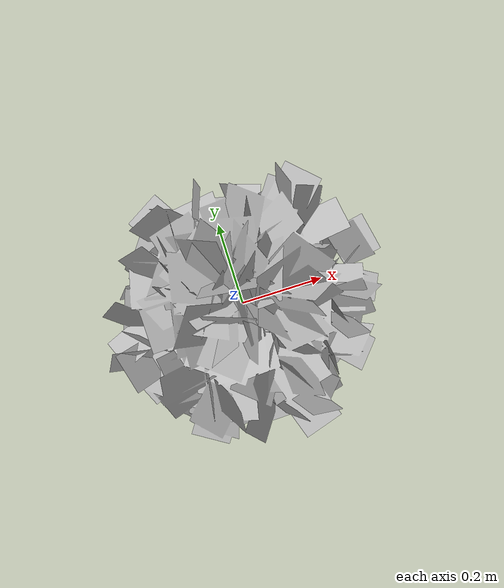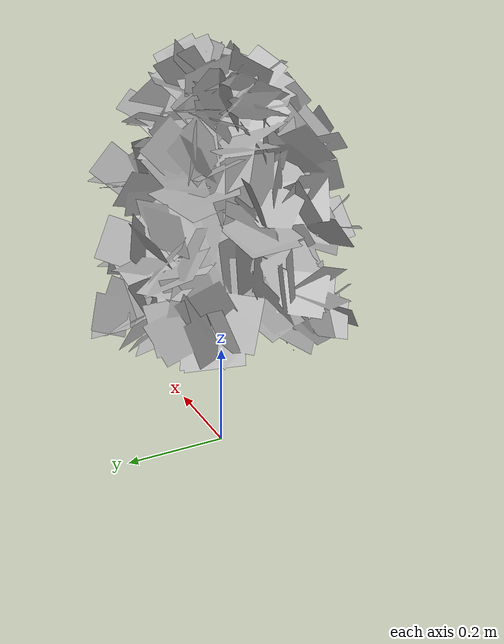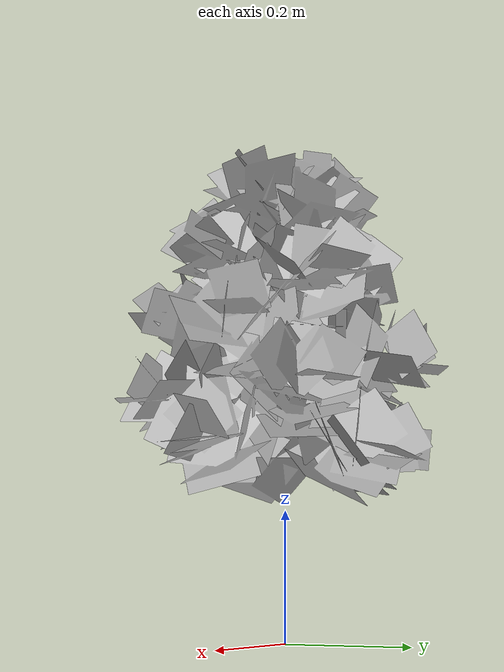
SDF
<?xml version="1.0" ?>
<sdf version="1.6">
  <model name="low_poly_bush_buxus">
    <static>true</static>
    <link name="link">
      <visual name="visual">
        <geometry>
          <mesh>
            <uri>model://low_poly_bush_buxus/Untitled.obj</uri>
            <scale>0.006868 0.006868 0.006868</scale>
          </mesh>
        </geometry>
      </visual>
                  <collision name="collision">
        <geometry>
          <mesh>
            <uri>model://low_poly_bush_buxus/Untitled.obj</uri>
            <scale>0.006868 0.006868 0.006868</scale>
          </mesh>
        </geometry>
      </collision>
    </link>
  </model>
</sdf>
